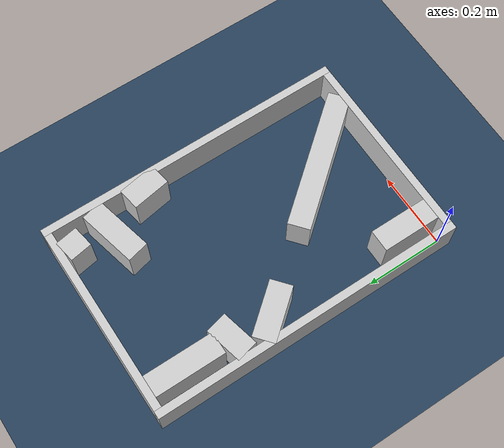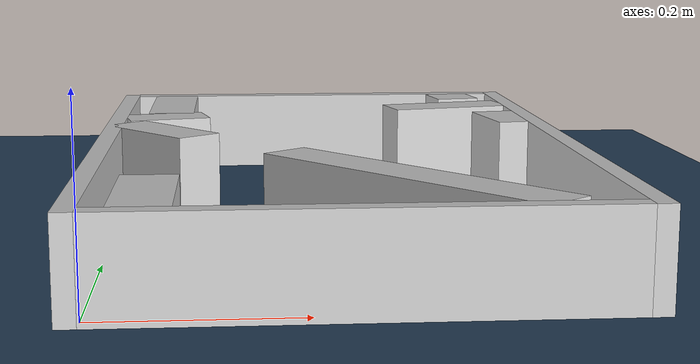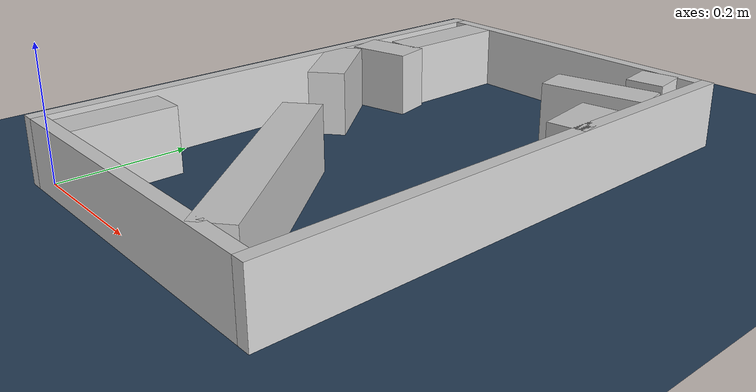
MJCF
<?xml version="1.0" ?>
<mujoco model="generated_real_template">
  <compiler angle="degree"/>
  <option timestep="0.002" integrator="implicitfast" iterations="100" cone="elliptic"/>
  <default>
    <geom density="1"/>
  </default>
  <asset>
    <texture builtin="gradient" height="3072" rgb1="0.3 0.5 0.7" rgb2="0 0 0" type="skybox" width="512"/>
    <texture builtin="checker" height="300" mark="edge" markrgb="0.8 0.8 0.8" name="groundplane" rgb1="0.2 0.3 0.4" rgb2="0.1 0.2 0.3" type="2d" width="300"/>
    <material name="groundplane" reflectance="0.2" texrepeat="5 5" texture="groundplane" texuniform="true"/>
  </asset>
  <worldbody>
    <light dir="0 0 -1" directional="true" pos="0 0 1.5"/>
    <geom name="floor" type="plane" condim="4" friction="0.5 0.005 0.001" material="groundplane" size="0 0 0.05"/>
    <body name="walls">
      <geom name="wall_boundary_left" type="box" condim="4" friction="1.0 0.005 0.0001" rgba="0.8 0.8 0.8 1" pos="-0.010000 0.387500 0.050000" euler="0 0 0.000000" size="0.010000 0.407500 0.050000"/>
      <geom name="wall_boundary_right" type="box" condim="4" friction="1.0 0.005 0.0001" rgba="0.8 0.8 0.8 1" pos="0.500000 0.387500 0.050000" euler="0 0 0.000000" size="0.010000 0.407500 0.050000"/>
      <geom name="wall_boundary_bottom" type="box" condim="4" friction="1.0 0.005 0.0001" rgba="0.8 0.8 0.8 1" pos="0.245000 -0.010000 0.050000" euler="0 0 0.000000" size="0.245000 0.010000 0.050000"/>
      <geom name="wall_boundary_top" type="box" condim="4" friction="1.0 0.005 0.0001" rgba="0.8 0.8 0.8 1" pos="0.245000 0.785000 0.050000" euler="0 0 0.000000" size="0.245000 0.010000 0.050000"/>
      <geom name="wall_inner_1_1" type="box" condim="4" friction="1.0 0.005 0.0001" rgba="0.8 0.8 0.8 1" pos="0.413704 0.649821 0.050000" euler="0 0 -166.670448" size="0.078408 0.028500 0.050000"/>
      <geom name="wall_inner_1_2" type="box" condim="4" friction="1.0 0.005 0.0001" rgba="0.8 0.8 0.8 1" pos="0.048035 0.563182 0.050000" euler="0 0 -166.670448" size="0.049365 0.028500 0.050000"/>
      <geom name="wall_inner_2_1" type="box" condim="4" friction="1.0 0.005 0.0001" rgba="0.8 0.8 0.8 1" pos="0.047623 0.452451 0.050000" euler="0 0 -50.456280" size="0.071693 0.028500 0.050000"/>
      <geom name="wall_inner_2_2" type="box" condim="4" friction="1.0 0.005 0.0001" rgba="0.8 0.8 0.8 1" pos="0.303023 0.143108 0.050000" euler="0 0 -50.456280" size="0.185580 0.028500 0.050000"/>
      <geom name="wall_inner_3_1" type="box" condim="4" friction="1.0 0.005 0.0001" rgba="0.8 0.8 0.8 1" pos="0.437228 0.746365 0.050000" euler="0 0 -80.307843" size="0.029049 0.028500 0.050000"/>
      <geom name="wall_inner_3_2" type="box" condim="4" friction="1.0 0.005 0.0001" rgba="0.8 0.8 0.8 1" pos="0.473523 0.533851 0.050000" euler="0 0 -80.307843" size="0.049790 0.028500 0.050000"/>
      <geom name="wall_inner_4_1" type="box" condim="4" friction="1.0 0.005 0.0001" rgba="0.8 0.8 0.8 1" pos="0.052534 0.684023 0.050000" euler="0 0 -90.039852" size="0.090977 0.028500 0.050000"/>
      <geom name="wall_inner_4_2" type="box" condim="4" friction="1.0 0.005 0.0001" rgba="0.8 0.8 0.8 1" pos="0.052111 0.075842 0.050000" euler="0 0 -90.039852" size="0.075842 0.028500 0.050000"/>
    </body>
  </worldbody>
</mujoco>
